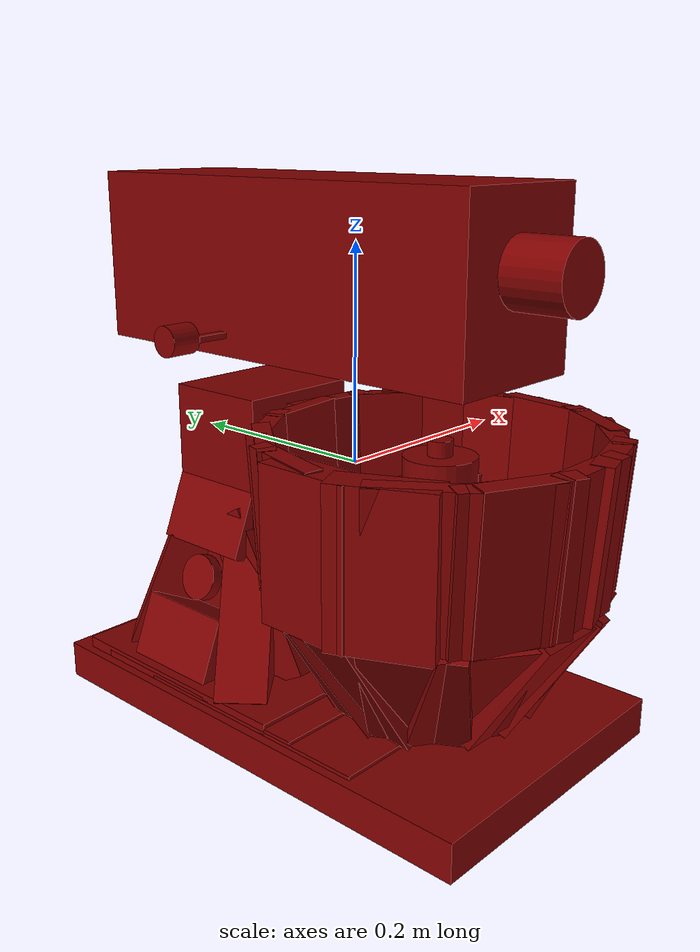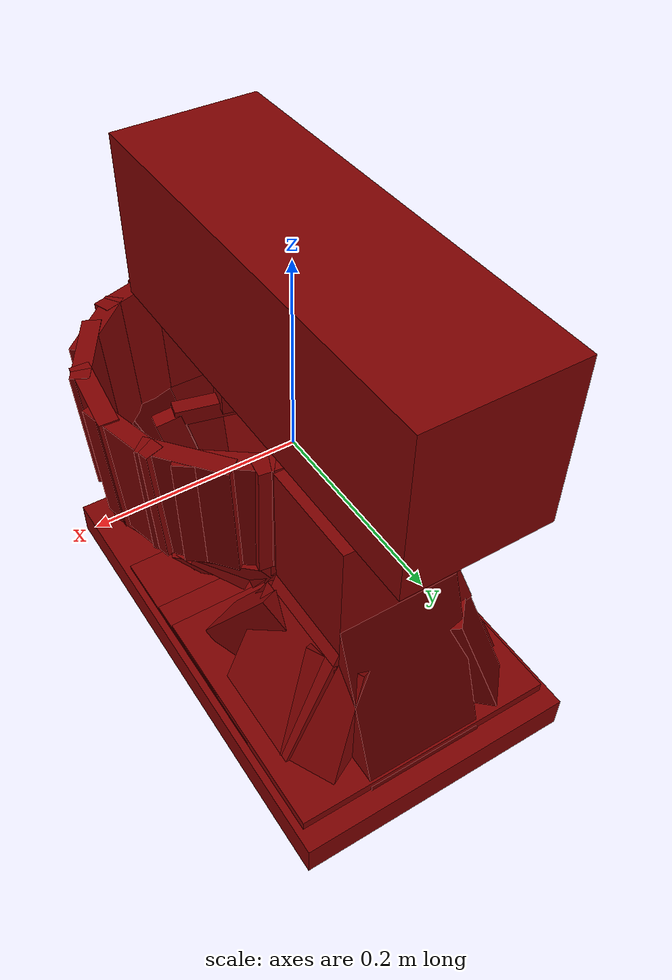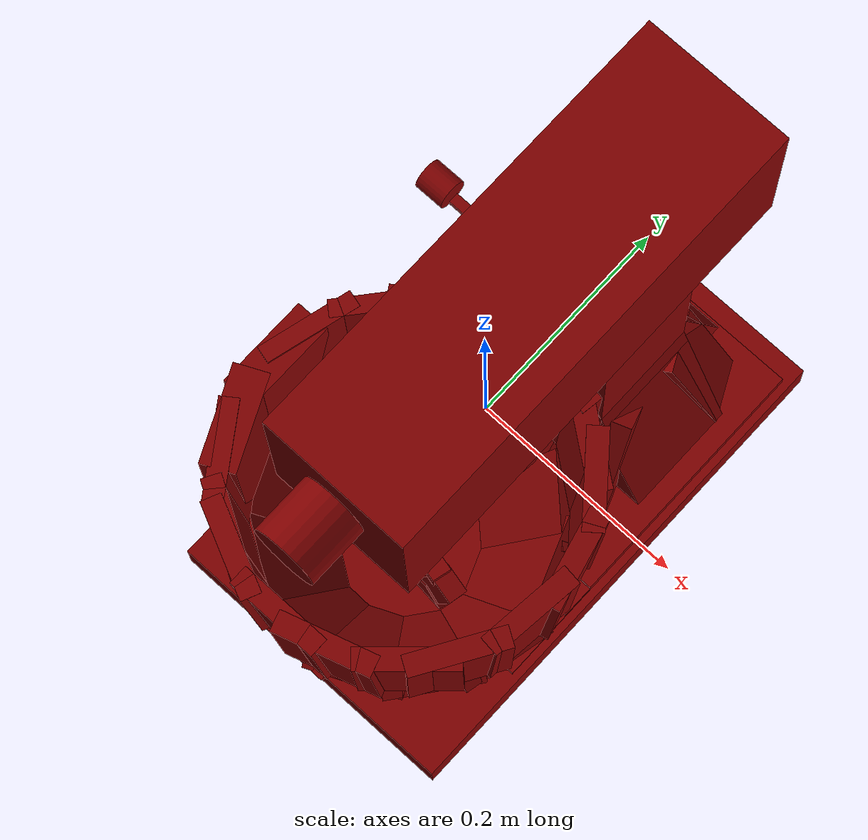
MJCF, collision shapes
<?xml version='1.0' encoding='UTF-8'?>
<mujoco model="model">
  <option timestep="0.002" gravity="0.0 0.0 -9.81"/>
  <compiler angle="radian"/>
  <asset>
    <mesh file="visuals/Blender001.obj" name="Blender001_vis"/>
    <mesh file="visuals/Body001.obj" name="Body001_vis"/>
    <mesh file="visuals/Button001.obj" name="Button001_vis"/>
    <mesh file="visuals/Container001.obj" name="Container001_vis"/>
    <mesh file="visuals/Lever001.obj" name="Lever001_vis"/>
    <mesh file="visuals/Lid001.obj" name="Lid001_vis"/>
    <texture file="visuals/T_BC001.png" name="Body001_material" type="2d"/>
    <material name="Body001_material" rgba="1 1 1 1.0" texture="Body001_material" shininess="0.141421377658844" specular="0.5"/>
    <texture file="visuals/T_BC001.png" name="Button001_material" type="2d"/>
    <material name="Button001_material" rgba="1 1 1 1.0" texture="Button001_material" shininess="0.141421377658844" specular="0.3103448502657381"/>
    <texture file="visuals/T_BC001.png" name="Container001_material" type="2d"/>
    <material name="Container001_material" rgba="1 1 1 1.0" texture="Container001_material" shininess="0.141421377658844" specular="1"/>
    <texture file="visuals/T_BC001.png" name="Lid001_material" type="2d"/>
    <material name="Lid001_material" rgba="1 1 1 1.0" texture="Lid001_material" shininess="0.141421377658844" specular="0.5"/>
    <texture file="visuals/T_BC001.png" name="Blender001_material" type="2d"/>
    <material name="Blender001_material" rgba="1 1 1 1.0" texture="Blender001_material" shininess="0.141421377658844" specular="1"/>
    <texture file="visuals/T_BC001.png" name="Lever001_material" type="2d"/>
    <material name="Lever001_material" rgba="1 1 1 1.0" texture="Lever001_material" shininess="0.141421377658844" specular="0.3103448502657381"/>
  </asset>
  <default>
    <default class="visual">
      <geom conaffinity="0" contype="0" group="1" type="mesh"/>
    </default>
    <default class="collision">
      <geom group="0" rgba="0.5 0 0 0.5"/>
    </default>
    <default class="spawn">
      <geom group="0" rgba="1 1 1 0.5" contype="0" conaffinity="0"/>
      <site group="0" rgba="1 1 1 0.5"/>
    </default>
    <default class="region">
      <geom group="1" conaffinity="0" contype="0" rgba="0 1 0 0"/>
    </default>
  </default>
  <worldbody>
    <body>
      <body name="object">
        <geom mesh="Body001_vis" type="mesh" solimp="0.998 0.998 0.001" solref="0.001 1" friction="0.95 0.3 0.1" class="visual" material="Body001_material"/>
        <geom class="collision" type="box" pos="-0.000388 0.014858 -0.236480" size="0.1470741182565689 0.24640962481498718 0.018197868019342422" quat="1.0 0.0 0.0 0.0" density="1000.0"/>
        <geom class="collision" type="box" pos="0.002929 0.190886 -0.139831" size="0.06197034567594528 0.020992998033761978 0.10480103641748428" quat="3.186945605193614e-07 4.054764024541413e-10 -0.17126384377479553 0.9852252006530762" density="1000.0"/>
        <geom class="collision" type="box" pos="-0.097369 0.128064 -0.192540" size="0.02340238355100155 0.051185041666030884 0.037328436970710754" quat="4.0934835965344973e-07 0.18937274813652039 6.279142206189192e-10 0.9819052815437317" density="1000.0"/>
        <geom class="collision" type="box" pos="0.062334 0.126368 -0.152365" size="0.0234023816883564 0.052881255745887756 0.09892302751541138" quat="4.989324224879965e-07 -0.1999048888683319 -9.668909228821576e-08 0.9798153042793274" density="1000.0"/>
        <geom class="collision" type="box" pos="0.002929 0.126368 -0.082664" size="0.061970364302396774 0.05288127809762955 0.13840024173259735" quat="1.0 0.0 0.0 0.0" density="1000.0"/>
        <geom class="collision" type="box" pos="0.079927 0.122957 -0.171644" size="0.0234023816883564 0.05629220977425575 0.0786064937710762" quat="4.989324224879965e-07 -0.1999048888683319 -9.668909228821576e-08 0.9798153042793274" density="1000.0"/>
        <geom class="collision" type="box" pos="0.032969 0.126368 -0.061355" size="0.0234023816883564 0.052881255745887756 0.05018816143274307" quat="4.989324224879965e-07 -0.1999048888683319 -9.668909228821576e-08 0.9798153042793274" density="1000.0"/>
        <geom class="collision" type="box" pos="-0.001893 0.068770 -0.135004" size="0.06679213792085648 0.025309335440397263 0.08402279764413834" quat="0.9671083092689514 -0.2543649673461914 -5.648036206370866e-17 4.208608428094833e-25" density="1000.0"/>
        <geom class="collision" type="box" pos="0.000269 0.111018 -0.225568" size="0.1389281153678894 0.12880635261535645 0.018197905272245407" quat="1.0 0.0 0.0 0.0" density="1000.0"/>
        <geom class="collision" type="box" pos="0.000269 0.079318 -0.229734" size="0.1389281153678894 0.12880635261535645 0.018197912722826004" quat="1.0 0.0 0.0 0.0" density="1000.0"/>
        <geom class="collision" type="box" pos="0.000269 0.009611 -0.232980" size="0.1389281153678894 0.12880635261535645 0.0181979201734066" quat="1.0 0.0 0.0 0.0" density="1000.0"/>
        <geom class="collision" type="box" pos="-0.072196 0.190806 -0.164141" size="0.021484268829226494 0.024510791525244713 0.06869032979011536" quat="0.35829052329063416 0.17631539702415466 -0.06910073757171631 0.9142023324966431" density="1000.0"/>
        <geom class="collision" type="box" pos="0.075516 0.179870 -0.163242" size="0.01742730475962162 0.029545051977038383 0.07128416001796722" quat="0.9555922150611877 0.0435466431081295 -0.18429800868034363 0.2257906198501587" density="1000.0"/>
        <geom class="collision" type="box" pos="-0.084653 0.060327 -0.162775" size="0.021484268829226494 0.024510791525244713 0.06869032979011536" quat="0.32037287950515747 -0.2896636128425598 -0.10357760637998581 -0.8959508538246155" density="1000.0"/>
        <geom class="collision" type="box" pos="0.072380 0.057587 -0.156329" size="0.021484268829226494 0.024510791525244713 0.06869032979011536" quat="0.7780860066413879 -0.17706523835659027 -0.2515576481819153 -0.5476758480072021" density="1000.0"/>
        <geom class="collision" type="box" pos="-0.047645 0.128064 -0.068424" size="0.02340238355100155 0.051185041666030884 0.037328436970710754" quat="4.0934835965344973e-07 0.18937274813652039 6.279142206189192e-10 0.9819052815437317" density="1000.0"/>
        <body name="Button001">
          <joint axis="0.9512019157409668 0.0 -0.30856916308403015" pos="-0.085569 0.118268 -0.123152" limited="true" name="Button001_joint" range="0.0 0.008" type="slide" damping="1" frictionloss="1" armature=".01" stiffness="0.5" springref="-0.5"/>
          <geom mesh="Button001_vis" type="mesh" solimp="0.998 0.998 0.001" solref="0.001 1" friction="0.95 0.3 0.1" class="visual" material="Button001_material"/>
          <geom class="collision" type="cylinder" pos="-0.089643 0.118370 -0.121302" size="0.022103259339928627 0.005479670129716396" quat="0.8143262267112732 0.0 -0.580407440662384 0.0" density="1000.0"/>
        </body>
        <body name="Container001">
          <joint axis="0.0 0.0 1.0" pos="0.000162 -0.096114 -0.078570" limited="true" name="Container001_joint" range="0.0 0.05" type="slide" damping="1" frictionloss="1" armature=".01" stiffness="0.05"/>
          <geom mesh="Container001_vis" type="mesh" solimp="0.998 0.998 0.001" solref="0.001 1" friction="0.95 0.3 0.1" class="visual" material="Container001_material"/>
          <geom class="collision" type="box" pos="-0.148255 -0.090790 -0.022015" size="0.01607884094119072 0.044406406581401825 0.06841403245925903" quat="1.0 0.0 0.0 0.0" density="1000.0"/>
          <geom class="collision" type="box" pos="-0.017746 0.046576 -0.020338" size="0.00875962246209383 0.044406406581401825 0.0681932121515274" quat="0.7471170425415039 -0.021018153056502342 -0.023651298135519028 -0.6639389991760254" density="1000.0"/>
          <geom class="collision" type="box" pos="0.085154 0.025298 -0.021433" size="0.010286817327141762 0.044406406581401825 0.0681932121515274" quat="0.447671115398407 -0.028289711102843285 -0.014171858318150043 -0.8936383128166199" density="1000.0"/>
          <geom class="collision" type="box" pos="0.140927 -0.053782 -0.020999" size="0.009610497392714024 0.044406406581401825 0.0681932121515274" quat="0.12310067564249039 -0.03139999881386757 -0.0038969668094068766 -0.9918896555900574" density="1000.0"/>
          <geom class="collision" type="box" pos="0.123162 -0.169396 -0.019739" size="0.009641319513320923 0.044406406581401825 0.0681932121515274" quat="0.2708934545516968 0.03045661188662052 -0.00857560709118843 0.9620891809463501" density="1000.0"/>
          <geom class="collision" type="box" pos="0.043434 -0.233884 -0.020275" size="0.00974887516349554 0.044406406581401825 0.0681932121515274" quat="0.5933062434196472 0.025463253259658813 -0.018782146275043488 0.804354727268219" density="1000.0"/>
          <geom class="collision" type="box" pos="-0.062789 -0.227658 -0.020301" size="0.009340297430753708 0.044406406581401825 0.0681932121515274" quat="0.8428366184234619 0.01700722984969616 -0.02668146975338459 0.537238597869873" density="1000.0"/>
          <geom class="collision" type="box" pos="-0.122634 -0.176011 -0.021285" size="0.008992565795779228 0.044406406581401825 0.0681932121515274" quat="0.954062819480896 0.009431536309421062 -0.03020252287387848 0.2979312539100647" density="1000.0"/>
          <geom class="collision" type="box" pos="-0.004514 -0.202288 -0.146500" size="0.009864562191069126 0.044406432658433914 0.0681932121515274" quat="0.6845924258232117 0.19955039024353027 -0.19691559672355652 0.672857403755188" density="1000.0"/>
          <geom class="collision" type="box" pos="-0.089603 -0.148948 -0.146752" size="0.009229958988726139 0.044406428933143616 0.0681932121515274" quat="0.925520658493042 0.0784800723195076 -0.2691411077976227 0.2545888125896454" density="1000.0"/>
          <geom class="collision" type="box" pos="-0.091742 -0.045617 -0.146906" size="0.010463465936481953 0.044406432658433914 0.06695568561553955" quat="0.9261558651924133 -0.06953360885381699 -0.27159008383750916 -0.2522681653499603" density="1000.0"/>
          <geom class="collision" type="box" pos="-0.001994 0.008544 -0.145692" size="0.011980590410530567 0.044406428933143616 0.06371644139289856" quat="0.6856235861778259 -0.19312475621700287 -0.2032213658094406 -0.6718066930770874" density="1000.0"/>
          <geom class="collision" type="box" pos="0.079890 -0.163643 -0.145549" size="0.010591658763587475 0.044406428933143616 0.0681932121515274" quat="0.30785584449768066 0.26688408851623535 -0.0858425498008728 0.9091912508010864" density="1000.0"/>
          <geom class="collision" type="box" pos="-0.111377 -0.002750 -0.020063" size="0.008105087094008923 0.044406406581401825 0.0681932121515274" quat="0.9396122694015503 -0.010787836275994778 -0.029745087027549744 -0.34077510237693787" density="1000.0"/>
          <geom class="collision" type="box" pos="0.090874 -0.054072 -0.148766" size="0.012311420403420925 0.044406428933143616 0.0655110701918602" quat="0.17554129660129547 -0.28112170100212097 -0.040944475680589676 -0.9425918459892273" density="1000.0"/>
          <geom class="collision" type="box" pos="-0.136059 -0.152041 -0.022015" size="0.016078781336545944 0.044406406581401825 0.06841429322957993" quat="0.9760299324989319 0.0 0.0 0.21763628721237183" density="1000.0"/>
          <geom class="collision" type="box" pos="-0.140077 -0.056674 -0.020063" size="0.008105087094008923 0.044406406581401825 0.0681932121515274" quat="0.9912547469139099 -0.0040556457825005054 -0.03137991949915886 -0.12811297178268433" density="1000.0"/>
          <geom class="collision" type="box" pos="-0.076272 0.027758 -0.020338" size="0.00875962246209383 0.044406406581401825 0.0681932121515274" quat="0.8737058043479919 -0.015366965904831886 -0.02765868976712227 -0.48542454838752747" density="1000.0"/>
          <geom class="collision" type="box" pos="0.026238 0.052157 -0.021433" size="0.010286817327141762 0.044406406581401825 0.0681932121515274" quat="0.6580836772918701 -0.023814741522073746 -0.020832838490605354 -0.7522796988487244" density="1000.0"/>
          <geom class="collision" type="box" pos="0.110006 0.004317 -0.020999" size="0.009610498324036598 0.044406406581401825 0.0681932121515274" quat="0.3360210359096527 -0.02979923225939274 -0.010637335479259491 -0.9413228631019592" density="1000.0"/>
          <geom class="collision" type="box" pos="0.143042 -0.107892 -0.019739" size="0.009641320444643497 0.044406406581401825 0.0681932121515274" quat="0.055014610290527344 0.03159289062023163 -0.0017415831098333001 0.9979841113090515" density="1000.0"/>
          <geom class="collision" type="box" pos="0.098263 -0.200143 -0.020275" size="0.00974887516349554 0.044406406581401825 0.0681932121515274" quat="0.40402790904045105 0.02894057333469391 -0.012790211476385593 0.9141992926597595" density="1000.0"/>
          <geom class="collision" type="box" pos="-0.000542 -0.239634 -0.020301" size="0.009340297430753708 0.044406402856111526 0.0681932121515274" quat="0.7057111263275146 0.02240642160177231 -0.022340519353747368 0.7077928185462952" density="1000.0"/>
          <geom class="collision" type="box" pos="-0.076660 -0.218304 -0.021285" size="0.008992565795779228 0.044406406581401825 0.0681932121515274" quat="0.8663532137870789 0.01577862910926342 -0.027425924316048622 0.49842849373817444" density="1000.0"/>
          <geom class="collision" type="box" pos="0.041434 -0.191910 -0.146500" size="0.009864562191069126 0.044406428933143616 0.0681932121515274" quat="0.5217445492744446 0.23762311041355133 -0.14876608550548553 0.8057211637496948" density="1000.0"/>
          <geom class="collision" type="box" pos="-0.058255 -0.179772 -0.146752" size="0.009229958988726139 0.044406428933143616 0.0681932121515274" quat="0.8479281067848206 0.1351737529039383 -0.24560968577861786 0.4499131143093109" density="1000.0"/>
          <geom class="collision" type="box" pos="-0.103426 -0.087190 -0.147949" size="0.010463465936481953 0.044406428933143616 0.0681932121515274" quat="0.9588585495948792 -0.008759032003581524 -0.2802131474018097 -0.044656168669462204" density="1000.0"/>
          <geom class="collision" type="box" pos="-0.045686 -0.000307 -0.146269" size="0.011980590410530567 0.044406428933143616 0.06440060585737228" quat="0.815398633480072 -0.1442672163248062 -0.24038104712963104 -0.5064868927001953" density="1000.0"/>
          <geom class="collision" type="box" pos="0.101425 -0.121068 -0.145549" size="0.01059165969491005 0.044406428933143616 0.0681932121515274" quat="0.10260351747274399 0.2791692018508911 -0.025701219215989113 0.954398512840271" density="1000.0"/>
          <geom class="collision" type="box" pos="0.065596 -0.016459 -0.147101" size="0.012311420403420925 0.044406428933143616 0.06352639943361282" quat="0.3764757812023163 -0.2654721736907959 -0.10114531964063644 -0.8817936778068542" density="1000.0"/>
          <geom class="collision" type="cylinder" pos="-0.000513 -0.097655 -0.202249" size="0.06730954349040985 0.010610586032271385" quat="1.0 0.0 0.0 0.0" density="1000.0"/>
        </body>
        <body name="Lid001">
          <joint axis="-1.0 0.0 0.0" pos="0.000000 0.171565 -0.011696" limited="true" name="Lid001_joint" range="0.0 1.5707963267948966" type="hinge" damping="1" frictionloss="1" armature=".01" stiffness="0.05"/>
          <geom mesh="Lid001_vis" type="mesh" solimp="0.998 0.998 0.001" solref="0.001 1" friction="0.95 0.3 0.1" class="visual" material="Lid001_material"/>
          <geom class="collision" type="cylinder" pos="0.000578 -0.195159 0.187492" size="0.030359400436282158 0.030359400436282158" quat="0.7071067094802856 0.7071068286895752 0.0 0.0" density="1000.0"/>
          <geom class="collision" type="box" pos="0.002929 0.045644 0.174672" size="0.07102589309215546 0.215374156832695 0.07949654757976532" quat="1.0 0.0 0.0 0.0" density="1000.0"/>
          <body name="Blender001">
            <joint axis="0.0 0.0 1.0" pos="-0.012228 -0.106075 -0.064676" limited="false" name="Blender001_joint" range="0 360" type="hinge" damping="1" frictionloss="1" armature=".01" stiffness="0.05"/>
            <geom mesh="Blender001_vis" type="mesh" solimp="0.998 0.998 0.001" solref="0.001 1" friction="0.95 0.3 0.1" class="visual" material="Blender001_material"/>
            <geom class="collision" type="cylinder" pos="-0.011704 -0.106994 0.013438" size="0.03237089887261391 0.01715884543955326" quat="0.7855479121208191 0.0 0.0 0.6188008785247803" density="1000.0"/>
            <geom class="collision" type="box" pos="-0.010055 -0.106648 -0.029984" size="0.008867871947586536 0.07720372825860977 0.009225652553141117" quat="0.7855479121208191 0.0 0.0 0.6188008785247803" density="1000.0"/>
            <geom class="collision" type="box" pos="0.025883 -0.116140 -0.132653" size="0.008867871947586536 0.05385828763246536 0.013741519302129745" quat="0.72093266248703 -0.2991736829280853 -0.2465105652809143 0.5744421482086182" density="1000.0"/>
            <geom class="collision" type="box" pos="-0.052884 -0.095430 -0.136504" size="0.008867872878909111 0.04532240703701973 0.013741519302129745" quat="0.2993749976158142 -0.7114409804344177 -0.5862623453140259 0.2460137903690338" density="1000.0"/>
            <geom class="collision" type="box" pos="-0.012712 -0.105408 -0.007613" size="0.017273016273975372 0.033695898950099945 0.020048784092068672" quat="0.7855479121208191 0.0 0.0 0.6188008785247803" density="1000.0"/>
            <geom class="collision" type="box" pos="-0.087266 -0.086898 -0.067785" size="0.008867871947586536 0.04532240703701973 0.013741519302129745" quat="0.46521297097206116 -0.5983477830886841 -0.5078616738319397 0.40943053364753723" density="1000.0"/>
            <geom class="collision" type="box" pos="0.062364 -0.123251 -0.069558" size="0.008867871947586536 0.04216091334819794 0.013741519302129745" quat="0.609071671962738 -0.476049542427063 -0.38677018880844116 0.502809464931488" density="1000.0"/>
            <geom class="collision" type="cylinder" pos="-0.011559 -0.106392 0.036884" size="0.01104024238884449 0.007753560785204172" quat="0.7855479121208191 0.0 0.0 0.6188008785247803" density="1000.0"/>
          </body>
          <body name="Lever001">
            <joint axis="0.0 -1.0 0.0" pos="-0.072482 0.086954 0.118166" limited="true" name="Lever001_joint" range="0.0 0.09" type="slide" damping="1" frictionloss="1" armature=".01" stiffness="-0.05" springref="0.05"/>
            <geom mesh="Lever001_vis" type="mesh" solimp="0.998 0.998 0.001" solref="0.001 1" friction="0.95 0.3 0.1" class="visual" material="Lever001_material"/>
            <geom class="collision" type="cylinder" pos="-0.130385 0.088643 0.120134" size="0.013762379996478558 0.013762379996478558" quat="0.622999906539917 0.33447137475013733 0.6215016841888428 0.33724719285964966" density="1000.0"/>
            <geom class="collision" type="box" pos="-0.097136 0.087262 0.118014" size="0.01756945066154003 0.004704898688942194 0.002714346395805478" quat="1.0 0.0 0.0 0.0" density="1000.0"/>
          </body>
        </body>
        <geom class="region" name="reg_main" type="box" pos="-2.4000000000010124e-05 0.011418499999999984 2.4999999999886224e-06" size="0.1496 0.24568849999999998 0.25275349999999996"/>
      </body>
    </body>
  </worldbody>
  <actuator>
    <motor name="Button001_joint_actuator" joint="Button001_joint" gear="0.5"/>
    <motor name="Container001_joint_actuator" joint="Container001_joint" gear="10"/>
    <motor name="Lid001_joint_actuator" joint="Lid001_joint" gear="10"/>
    <motor name="Blender001_joint_actuator" joint="Blender001_joint" gear="10"/>
    <motor name="Lever001_joint_actuator" joint="Lever001_joint" gear="10"/>
  </actuator>
</mujoco>
